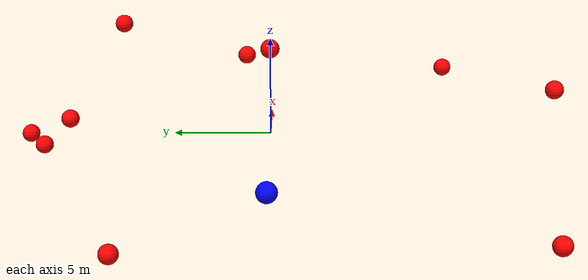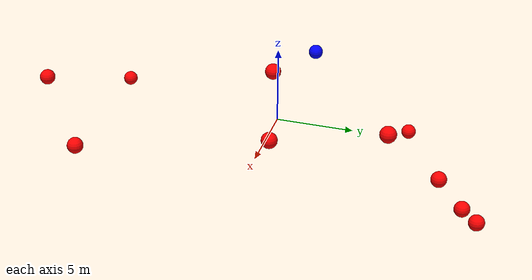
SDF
<?xml version="1.0" ?>
<sdf version="1.8">
    <world name="3d_world">
        <physics name="1ms" type="ode">
            <max_step_size>0.001</max_step_size>
            <real_time_factor>1.0</real_time_factor>
            <real_time_update_rate>1000.0</real_time_update_rate>
        </physics>
        <gravity>0 0 0</gravity>

        <plugin
            filename="gz-sim-physics-system"
            name="gz::sim::v8::systems::Physics">
        </plugin>
        <plugin
            filename="libignition-gazebo-user-commands-system.so"
            name="ignition::gazebo::systems::UserCommands">
        </plugin>
        <plugin
            filename="gz-sim-scene-broadcaster-system"
            name="gz::sim::systems::SceneBroadcaster">
        </plugin>
        <plugin
            filename="gz-sim-sensors-system"
            name="gz::sim::systems::Sensors">
            <render_engine>ogre2</render_engine>
        </plugin>

        <light type="directional" name="sun">
            <cast_shadows>true</cast_shadows>
            <pose>0 0 10 0 0 0</pose>
            <diffuse>0.8 0.8 0.8 1</diffuse>
            <specular>0.2 0.2 0.2 1</specular>
            <attenuation>
                <range>1000</range>
                <constant>0.9</constant>
                <linear>0.01</linear>
                <quadratic>0.001</quadratic>
            </attenuation>
            <direction>-0.5 0.1 -0.9</direction>
        </light>

        <!-- AGENTE -->
        <model name='agente' canonical_link='chassis'>
            <pose relative_to='world'>-10.0 0 0.0 0 0 0</pose>
            <link name='chassis'>
                <pose relative_to='__model__'>0.0 0 0.0 0 0 0</pose>
                <inertial>
                    <mass>1.14395</mass>
                    <inertia>
                        <ixx>0.095329</ixx>
                        <ixy>0</ixy>
                        <ixz>0</ixz>
                        <iyy>0.381317</iyy>
                        <iyz>0</iyz>
                        <izz>0.476646</izz>
                    </inertia>
                </inertial>
                <visual name='visual'>
                    <geometry>
                        <sphere>
                            <radius>0.5</radius>
                        </sphere>
                    </geometry>
                    <material>
                        <ambient>0.0 0.0 1.0 1</ambient>
                        <diffuse>0.0 0.0 1.0 1</diffuse>
                        <specular>0.0 0.0 1.0 1</specular>
                    </material>
                </visual>
                <collision name='collision'>
                    <geometry>
                        <sphere>
                            <radius>0.5</radius>
                        </sphere>
                    </geometry>
                </collision>
                <enable_gravity>false</enable_gravity>
            </link>

            <link name='lidar_link'>
                <pose relative_to='chassis'>0.0 0 0.1 0 0 0</pose>
                <inertial>
                    <mass>0.1</mass>
                    <inertia>
                        <ixx>0.000166667</ixx>
                        <iyy>0.000166667</iyy>
                        <izz>0.000166667</izz>
                    </inertia>
                </inertial>
                <collision name='collision'>
                    <geometry>
                        <cylinder>
                            <radius>0.05</radius>
                            <length>0.1</length>
                        </cylinder>
                    </geometry>
                </collision>
                <visual name='visual'>
                    <geometry>
                        <cylinder>
                            <radius>0.05</radius>
                            <length>0.1</length>
                        </cylinder>
                    </geometry>
                    <material>
                        <ambient>0.0 1.0 0.0 1</ambient>
                        <diffuse>0.0 1.0 0.0 1</diffuse>
                        <specular>0.0 1.0 0.0 1</specular>
                    </material>
                </visual>
                <sensor name="lidar" type="gpu_lidar">
                    <topic>scan</topic>
                    <update_rate>10</update_rate>
                    <lidar>
                        <scan>
                            <horizontal>
                                <samples>5000</samples>
                                <resolution>1</resolution>
                                <min_angle>-3.14159</min_angle>
                                <max_angle>3.14159</max_angle>
                            </horizontal>
                        </scan>
                        <range>
                            <min>0.1</min>
                            <max>10.0</max>
                            <resolution>0.01</resolution>
                        </range>
                    </lidar>
                    <visualize>true</visualize>
                    <always_on>true</always_on>
                    <update_rate>10</update_rate>
                    <pose_frame>lidar</pose_frame>
                </sensor>
                <enable_gravity>false</enable_gravity>
            </link>

            <joint name="lidar_joint" type="fixed">
                <parent>chassis</parent>
                <child>lidar_link</child>
            </joint>

            <plugin
                filename="ignition-gazebo-joint-state-publisher-system"
                name="ignition::gazebo::systems::JointStatePublisher">
            </plugin>
            <plugin
                filename="ignition-gazebo-odometry-publisher-system"
                name="ignition::gazebo::systems::OdometryPublisher">
                <dimensions>3</dimensions>
            </plugin>
            <plugin
                filename="ignition-gazebo-velocity-control-system"
                name="ignition::gazebo::systems::VelocityControl">
                <initial_linear>0.0 0 0</initial_linear>
                <initial_angular>0 0 0.0</initial_angular>
            </plugin>
            <plugin
                filename="libignition-gazebo-pose-publisher-system.so"
                name="ignition::gazebo::systems::PosePublisher">
                <topic>/agente/pose</topic>
                <frame_id>agente</frame_id>
                <update_rate>30</update_rate>
            </plugin>
        </model>

        <!-- OBSTACLE 1 -->
        <model name='obstacle_1' canonical_link='obstacle'>
            <static>false</static>
            <pose relative_to='world'>4.03 12.80 -1.79 0 0 0</pose>
            <link name='obstacle'>
                <pose relative_to='__model__'>0.0 0 0.0 0 0 0</pose>
                <visual name='visual'>
                    <geometry>
                        <sphere>
                            <radius>0.50</radius>
                        </sphere>
                    </geometry>
                    <material>
                        <ambient>1.0 0.0 0.0 1</ambient>
                        <diffuse>1.0 0.0 0.0 1</diffuse>
                        <specular>1.0 0.0 0.0 1</specular>
                    </material>
                </visual>
                <collision name='collision'>
                    <geometry>
                        <sphere>
                            <radius>0.50</radius>
                        </sphere>
                    </geometry>
                </collision>
                <enable_gravity>false</enable_gravity>
            </link>

            <plugin
                filename="ignition-gazebo-velocity-control-system"
                name="ignition::gazebo::systems::VelocityControl">
                <initial_linear>0.42 -1.90 0.27</initial_linear>
                <initial_angular>0 0 0</initial_angular>
            </plugin>

            <plugin
                filename="ignition-gazebo-odometry-publisher-system"
                name="ignition::gazebo::systems::OdometryPublisher">
                <dimensions>3</dimensions>
            </plugin>
        </model>

        <!-- OBSTACLE 2 -->
        <model name='obstacle_2' canonical_link='obstacle'>
            <static>false</static>
            <pose relative_to='world'>5.55 13.87 -1.54 0 0 0</pose>
            <link name='obstacle'>
                <pose relative_to='__model__'>0.0 0 0.0 0 0 0</pose>
                <visual name='visual'>
                    <geometry>
                        <sphere>
                            <radius>0.50</radius>
                        </sphere>
                    </geometry>
                    <material>
                        <ambient>1.0 0.0 0.0 1</ambient>
                        <diffuse>1.0 0.0 0.0 1</diffuse>
                        <specular>1.0 0.0 0.0 1</specular>
                    </material>
                </visual>
                <collision name='collision'>
                    <geometry>
                        <sphere>
                            <radius>0.50</radius>
                        </sphere>
                    </geometry>
                </collision>
                <enable_gravity>false</enable_gravity>
            </link>

            <plugin
                filename="ignition-gazebo-velocity-control-system"
                name="ignition::gazebo::systems::VelocityControl">
                <initial_linear>-0.97 -1.74 0.19</initial_linear>
                <initial_angular>0 0 0</initial_angular>
            </plugin>

            <plugin
                filename="ignition-gazebo-odometry-publisher-system"
                name="ignition::gazebo::systems::OdometryPublisher">
                <dimensions>3</dimensions>
            </plugin>
        </model>

        <!-- OBSTACLE 3 -->
        <model name='obstacle_3' canonical_link='obstacle'>
            <static>false</static>
            <pose relative_to='world'>6.99 1.48 2.77 0 0 0</pose>
            <link name='obstacle'>
                <pose relative_to='__model__'>0.0 0 0.0 0 0 0</pose>
                <visual name='visual'>
                    <geometry>
                        <sphere>
                            <radius>0.50</radius>
                        </sphere>
                    </geometry>
                    <material>
                        <ambient>1.0 0.0 0.0 1</ambient>
                        <diffuse>1.0 0.0 0.0 1</diffuse>
                        <specular>1.0 0.0 0.0 1</specular>
                    </material>
                </visual>
                <collision name='collision'>
                    <geometry>
                        <sphere>
                            <radius>0.50</radius>
                        </sphere>
                    </geometry>
                </collision>
                <enable_gravity>false</enable_gravity>
            </link>

            <plugin
                filename="ignition-gazebo-velocity-control-system"
                name="ignition::gazebo::systems::VelocityControl">
                <initial_linear>-0.95 -0.30 -0.56</initial_linear>
                <initial_angular>0 0 0</initial_angular>
            </plugin>

            <plugin
                filename="ignition-gazebo-odometry-publisher-system"
                name="ignition::gazebo::systems::OdometryPublisher">
                <dimensions>3</dimensions>
            </plugin>
        </model>

        <!-- OBSTACLE 4 -->
        <model name='obstacle_4' canonical_link='obstacle'>
            <static>false</static>
            <pose relative_to='world'>2.16 -15.21 1.83 0 0 0</pose>
            <link name='obstacle'>
                <pose relative_to='__model__'>0.0 0 0.0 0 0 0</pose>
                <visual name='visual'>
                    <geometry>
                        <sphere>
                            <radius>0.50</radius>
                        </sphere>
                    </geometry>
                    <material>
                        <ambient>1.0 0.0 0.0 1</ambient>
                        <diffuse>1.0 0.0 0.0 1</diffuse>
                        <specular>1.0 0.0 0.0 1</specular>
                    </material>
                </visual>
                <collision name='collision'>
                    <geometry>
                        <sphere>
                            <radius>0.50</radius>
                        </sphere>
                    </geometry>
                </collision>
                <enable_gravity>false</enable_gravity>
            </link>

            <plugin
                filename="ignition-gazebo-velocity-control-system"
                name="ignition::gazebo::systems::VelocityControl">
                <initial_linear>-0.76 1.84 -0.22</initial_linear>
                <initial_angular>0 0 0</initial_angular>
            </plugin>

            <plugin
                filename="ignition-gazebo-odometry-publisher-system"
                name="ignition::gazebo::systems::OdometryPublisher">
                <dimensions>3</dimensions>
            </plugin>
        </model>

        <!-- OBSTACLE 5 -->
        <model name='obstacle_5' canonical_link='obstacle'>
            <static>false</static>
            <pose relative_to='world'>3.66 11.20 -0.19 0 0 0</pose>
            <link name='obstacle'>
                <pose relative_to='__model__'>0.0 0 0.0 0 0 0</pose>
                <visual name='visual'>
                    <geometry>
                        <sphere>
                            <radius>0.50</radius>
                        </sphere>
                    </geometry>
                    <material>
                        <ambient>1.0 0.0 0.0 1</ambient>
                        <diffuse>1.0 0.0 0.0 1</diffuse>
                        <specular>1.0 0.0 0.0 1</specular>
                    </material>
                </visual>
                <collision name='collision'>
                    <geometry>
                        <sphere>
                            <radius>0.50</radius>
                        </sphere>
                    </geometry>
                </collision>
                <enable_gravity>false</enable_gravity>
            </link>

            <plugin
                filename="ignition-gazebo-velocity-control-system"
                name="ignition::gazebo::systems::VelocityControl">
                <initial_linear>-0.92 -1.77 0.03</initial_linear>
                <initial_angular>0 0 0</initial_angular>
            </plugin>

            <plugin
                filename="ignition-gazebo-odometry-publisher-system"
                name="ignition::gazebo::systems::OdometryPublisher">
                <dimensions>3</dimensions>
            </plugin>
        </model>

        <!-- OBSTACLE 6 -->
        <model name='obstacle_6' canonical_link='obstacle'>
            <static>false</static>
            <pose relative_to='world'>-7.46 7.51 -3.90 0 0 0</pose>
            <link name='obstacle'>
                <pose relative_to='__model__'>0.0 0 0.0 0 0 0</pose>
                <visual name='visual'>
                    <geometry>
                        <sphere>
                            <radius>0.50</radius>
                        </sphere>
                    </geometry>
                    <material>
                        <ambient>1.0 0.0 0.0 1</ambient>
                        <diffuse>1.0 0.0 0.0 1</diffuse>
                        <specular>1.0 0.0 0.0 1</specular>
                    </material>
                </visual>
                <collision name='collision'>
                    <geometry>
                        <sphere>
                            <radius>0.50</radius>
                        </sphere>
                    </geometry>
                </collision>
                <enable_gravity>false</enable_gravity>
            </link>

            <plugin
                filename="ignition-gazebo-velocity-control-system"
                name="ignition::gazebo::systems::VelocityControl">
                <initial_linear>1.72 -0.90 0.47</initial_linear>
                <initial_angular>0 0 0</initial_angular>
            </plugin>

            <plugin
                filename="ignition-gazebo-odometry-publisher-system"
                name="ignition::gazebo::systems::OdometryPublisher">
                <dimensions>3</dimensions>
            </plugin>
        </model>

        <!-- OBSTACLE 7 -->
        <model name='obstacle_7' canonical_link='obstacle'>
            <static>false</static>
            <pose relative_to='world'>1.31 0.05 4.22 0 0 0</pose>
            <link name='obstacle'>
                <pose relative_to='__model__'>0.0 0 0.0 0 0 0</pose>
                <visual name='visual'>
                    <geometry>
                        <sphere>
                            <radius>0.50</radius>
                        </sphere>
                    </geometry>
                    <material>
                        <ambient>1.0 0.0 0.0 1</ambient>
                        <diffuse>1.0 0.0 0.0 1</diffuse>
                        <specular>1.0 0.0 0.0 1</specular>
                    </material>
                </visual>
                <collision name='collision'>
                    <geometry>
                        <sphere>
                            <radius>0.50</radius>
                        </sphere>
                    </geometry>
                </collision>
                <enable_gravity>false</enable_gravity>
            </link>

            <plugin
                filename="ignition-gazebo-velocity-control-system"
                name="ignition::gazebo::systems::VelocityControl">
                <initial_linear>0.12 -0.01 -0.89</initial_linear>
                <initial_angular>0 0 0</initial_angular>
            </plugin>

            <plugin
                filename="ignition-gazebo-odometry-publisher-system"
                name="ignition::gazebo::systems::OdometryPublisher">
                <dimensions>3</dimensions>
            </plugin>
        </model>

        <!-- OBSTACLE 8 -->
        <model name='obstacle_8' canonical_link='obstacle'>
            <static>false</static>
            <pose relative_to='world'>7.18 8.53 4.55 0 0 0</pose>
            <link name='obstacle'>
                <pose relative_to='__model__'>0.0 0 0.0 0 0 0</pose>
                <visual name='visual'>
                    <geometry>
                        <sphere>
                            <radius>0.50</radius>
                        </sphere>
                    </geometry>
                    <material>
                        <ambient>1.0 0.0 0.0 1</ambient>
                        <diffuse>1.0 0.0 0.0 1</diffuse>
                        <specular>1.0 0.0 0.0 1</specular>
                    </material>
                </visual>
                <collision name='collision'>
                    <geometry>
                        <sphere>
                            <radius>0.50</radius>
                        </sphere>
                    </geometry>
                </collision>
                <enable_gravity>false</enable_gravity>
            </link>

            <plugin
                filename="ignition-gazebo-velocity-control-system"
                name="ignition::gazebo::systems::VelocityControl">
                <initial_linear>-0.44 -1.46 -0.78</initial_linear>
                <initial_angular>0 0 0</initial_angular>
            </plugin>

            <plugin
                filename="ignition-gazebo-odometry-publisher-system"
                name="ignition::gazebo::systems::OdometryPublisher">
                <dimensions>3</dimensions>
            </plugin>
        </model>

        <!-- OBSTACLE 9 -->
        <model name='obstacle_9' canonical_link='obstacle'>
            <static>false</static>
            <pose relative_to='world'>-7.92 -13.67 -3.26 0 0 0</pose>
            <link name='obstacle'>
                <pose relative_to='__model__'>0.0 0 0.0 0 0 0</pose>
                <visual name='visual'>
                    <geometry>
                        <sphere>
                            <radius>0.50</radius>
                        </sphere>
                    </geometry>
                    <material>
                        <ambient>1.0 0.0 0.0 1</ambient>
                        <diffuse>1.0 0.0 0.0 1</diffuse>
                        <specular>1.0 0.0 0.0 1</specular>
                    </material>
                </visual>
                <collision name='collision'>
                    <geometry>
                        <sphere>
                            <radius>0.50</radius>
                        </sphere>
                    </geometry>
                </collision>
                <enable_gravity>false</enable_gravity>
            </link>

            <plugin
                filename="ignition-gazebo-velocity-control-system"
                name="ignition::gazebo::systems::VelocityControl">
                <initial_linear>1.02 1.68 0.40</initial_linear>
                <initial_angular>0 0 0</initial_angular>
            </plugin>

            <plugin
                filename="ignition-gazebo-odometry-publisher-system"
                name="ignition::gazebo::systems::OdometryPublisher">
                <dimensions>3</dimensions>
            </plugin>
        </model>

        <!-- OBSTACLE 10 -->
        <model name='obstacle_10' canonical_link='obstacle'>
            <static>false</static>
            <pose relative_to='world'>9.17 -10.08 1.60 0 0 0</pose>
            <link name='obstacle'>
                <pose relative_to='__model__'>0.0 0 0.0 0 0 0</pose>
                <visual name='visual'>
                    <geometry>
                        <sphere>
                            <radius>0.50</radius>
                        </sphere>
                    </geometry>
                    <material>
                        <ambient>1.0 0.0 0.0 1</ambient>
                        <diffuse>1.0 0.0 0.0 1</diffuse>
                        <specular>1.0 0.0 0.0 1</specular>
                    </material>
                </visual>
                <collision name='collision'>
                    <geometry>
                        <sphere>
                            <radius>0.50</radius>
                        </sphere>
                    </geometry>
                </collision>
                <enable_gravity>false</enable_gravity>
            </link>

            <plugin
                filename="ignition-gazebo-velocity-control-system"
                name="ignition::gazebo::systems::VelocityControl">
                <initial_linear>-0.33 1.49 -0.24</initial_linear>
                <initial_angular>0 0 0</initial_angular>
            </plugin>

            <plugin
                filename="ignition-gazebo-odometry-publisher-system"
                name="ignition::gazebo::systems::OdometryPublisher">
                <dimensions>3</dimensions>
            </plugin>
        </model>

    </world>
</sdf>
